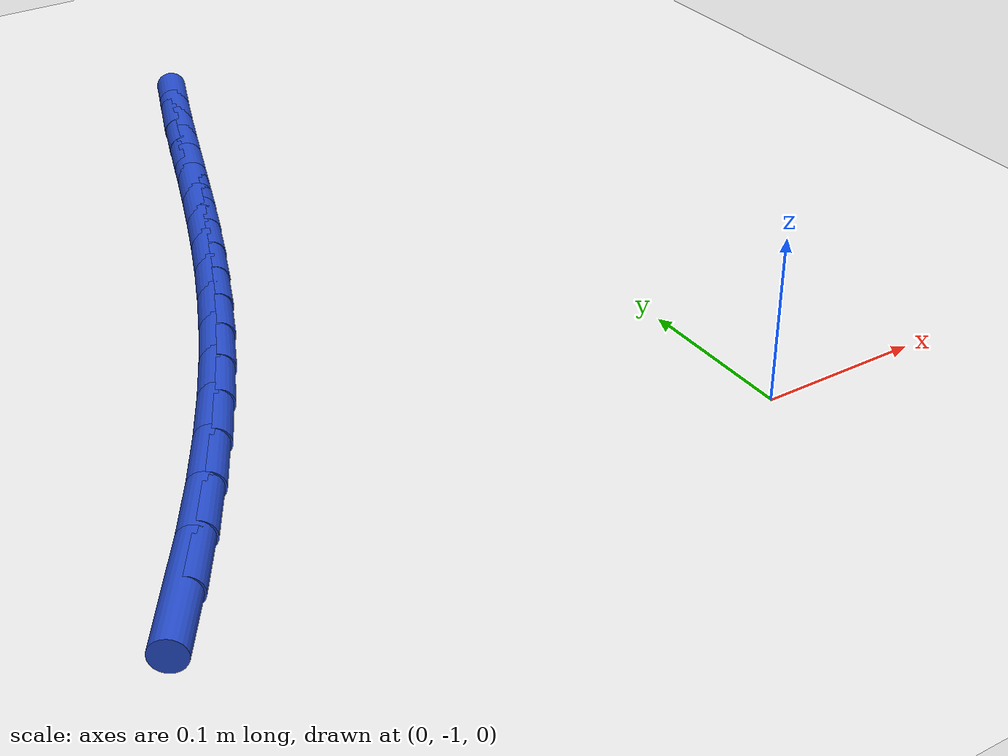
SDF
<sdf version="1.6">
 <world name="default">
  <model name="ground_plane">
   <static>1</static>
   <link name="link">
    <collision name="collision">
     <geometry><plane><normal>0 0 1</normal><size>100 100</size></plane></geometry>
     <surface><friction><ode><mu>100</mu><mu2>50</mu2></ode></friction></surface>
    </collision>
    <visual name="visual">
     <cast_shadows>0</cast_shadows>
     <geometry><plane><normal>0 0 1</normal><size>100 100</size></plane></geometry>
     <material>
      <script><uri>file://media/materials/scripts/gazebo.material</uri><name>Gazebo/WhiteGlow</name></script>
     </material>
    </visual>
   </link>
  </model>
  <model name="line">
   <link name="link_238">
    <pose>-0.3423890736142424 -0.9872053368880767 0.01 0 1.57 0.9895508569850079</pose>
    <collision name="collision">
     <geometry><cylinder><radius>0.01</radius><length>0.08</length></cylinder></geometry>
    </collision>
    <visual name="visual">
     <material>
      <script><name>Gazebo/Blue</name><uri>file://media/materials/scripts/gazebo.material</uri></script>
     </material>
     <geometry><cylinder><radius>0.01</radius><length>0.08</length></cylinder></geometry>
    </visual>
   </link>
   <link name="link_239">
    <pose>-0.31911903427657046 -0.9517840113050834 0.01 0 1.57 1.0191374338551102</pose>
    <collision name="collision">
     <geometry><cylinder><radius>0.01</radius><length>0.08</length></cylinder></geometry>
    </collision>
    <visual name="visual">
     <material>
      <script><name>Gazebo/Blue</name><uri>file://media/materials/scripts/gazebo.material</uri></script>
     </material>
     <geometry><cylinder><radius>0.01</radius><length>0.08</length></cylinder></geometry>
    </visual>
   </link>
   <link name="link_240">
    <pose>-0.29772353369176946 -0.9170166274464867 0.01 0 1.57 1.0482984063841438</pose>
    <collision name="collision">
     <geometry><cylinder><radius>0.01</radius><length>0.08</length></cylinder></geometry>
    </collision>
    <visual name="visual">
     <material>
      <script><name>Gazebo/Blue</name><uri>file://media/materials/scripts/gazebo.material</uri></script>
     </material>
     <geometry><cylinder><radius>0.01</radius><length>0.08</length></cylinder></geometry>
    </visual>
   </link>
   <link name="link_241">
    <pose>-0.27827747790331525 -0.8832492780295536 0.01 0 1.57 1.0773323771865626</pose>
    <collision name="collision">
     <geometry><cylinder><radius>0.01</radius><length>0.08</length></cylinder></geometry>
    </collision>
    <visual name="visual">
     <material>
      <script><name>Gazebo/Blue</name><uri>file://media/materials/scripts/gazebo.material</uri></script>
     </material>
     <geometry><cylinder><radius>0.01</radius><length>0.08</length></cylinder></geometry>
    </visual>
   </link>
   <link name="link_242">
    <pose>-0.260619663783503 -0.8504186556726699 0.01 0 1.57 1.1057965104993401</pose>
    <collision name="collision">
     <geometry><cylinder><radius>0.01</radius><length>0.08</length></cylinder></geometry>
    </collision>
    <visual name="visual">
     <material>
      <script><name>Gazebo/Blue</name><uri>file://media/materials/scripts/gazebo.material</uri></script>
     </material>
     <geometry><cylinder><radius>0.01</radius><length>0.08</length></cylinder></geometry>
    </visual>
   </link>
   <link name="link_243">
    <pose>-0.24457445037616787 -0.8184364186070804 0.01 0 1.57 1.1331729190629511</pose>
    <collision name="collision">
     <geometry><cylinder><radius>0.01</radius><length>0.08</length></cylinder></geometry>
    </collision>
    <visual name="visual">
     <material>
      <script><name>Gazebo/Blue</name><uri>file://media/materials/scripts/gazebo.material</uri></script>
     </material>
     <geometry><cylinder><radius>0.01</radius><length>0.08</length></cylinder></geometry>
    </visual>
   </link>
   <link name="link_244">
    <pose>-0.22996619672514315 -0.7872142250640249 0.01 0 1.57 1.1589054076408292</pose>
    <collision name="collision">
     <geometry><cylinder><radius>0.01</radius><length>0.08</length></cylinder></geometry>
    </collision>
    <visual name="visual">
     <material>
      <script><name>Gazebo/Blue</name><uri>file://media/materials/scripts/gazebo.material</uri></script>
     </material>
     <geometry><cylinder><radius>0.01</radius><length>0.08</length></cylinder></geometry>
    </visual>
   </link>
   <link name="link_245">
    <pose>-0.2166192618742637 -0.7566637332747477 0.01 0 1.57 1.1824211295163871</pose>
    <collision name="collision">
     <geometry><cylinder><radius>0.01</radius><length>0.08</length></cylinder></geometry>
    </collision>
    <visual name="visual">
     <material>
      <script><name>Gazebo/Blue</name><uri>file://media/materials/scripts/gazebo.material</uri></script>
     </material>
     <geometry><cylinder><radius>0.01</radius><length>0.08</length></cylinder></geometry>
    </visual>
   </link>
   <link name="link_246">
    <pose>-0.20435800486736316 -0.7266966014704895 0.01 0 1.57 1.203155803750303</pose>
    <collision name="collision">
     <geometry><cylinder><radius>0.01</radius><length>0.08</length></cylinder></geometry>
    </collision>
    <visual name="visual">
     <material>
      <script><name>Gazebo/Blue</name><uri>file://media/materials/scripts/gazebo.material</uri></script>
     </material>
     <geometry><cylinder><radius>0.01</radius><length>0.08</length></cylinder></geometry>
    </visual>
   </link>
   <link name="link_247">
    <pose>-0.19300678474827537 -0.6972244878824919 0.01 0 1.57 1.2205804425732054</pose>
    <collision name="collision">
     <geometry><cylinder><radius>0.01</radius><length>0.08</length></cylinder></geometry>
    </collision>
    <visual name="visual">
     <material>
      <script><name>Gazebo/Blue</name><uri>file://media/materials/scripts/gazebo.material</uri></script>
     </material>
     <geometry><cylinder><radius>0.01</radius><length>0.08</length></cylinder></geometry>
    </visual>
   </link>
   <link name="link_248">
    <pose>-0.18238996056083512 -0.6681590507419986 0.01 0 1.57 1.2342273928161767</pose>
    <collision name="collision">
     <geometry><cylinder><radius>0.01</radius><length>0.08</length></cylinder></geometry>
    </collision>
    <visual name="visual">
     <material>
      <script><name>Gazebo/Blue</name><uri>file://media/materials/scripts/gazebo.material</uri></script>
     </material>
     <geometry><cylinder><radius>0.01</radius><length>0.08</length></cylinder></geometry>
    </visual>
   </link>
   <link name="link_249">
    <pose>-0.17233189134887586 -0.6394119482802499 0.01 0 1.57 1.243713723370574</pose>
    <collision name="collision">
     <geometry><cylinder><radius>0.01</radius><length>0.08</length></cylinder></geometry>
    </collision>
    <visual name="visual">
     <material>
      <script><name>Gazebo/Blue</name><uri>file://media/materials/scripts/gazebo.material</uri></script>
     </material>
     <geometry><cylinder><radius>0.01</radius><length>0.08</length></cylinder></geometry>
    </visual>
   </link>
   <link name="link_250">
    <pose>-0.16265693615623228 -0.6108948387284903 0.01 0 1.57 1.2487604687012415</pose>
    <collision name="collision">
     <geometry><cylinder><radius>0.01</radius><length>0.08</length></cylinder></geometry>
    </collision>
    <visual name="visual">
     <material>
      <script><name>Gazebo/Blue</name><uri>file://media/materials/scripts/gazebo.material</uri></script>
     </material>
     <geometry><cylinder><radius>0.01</radius><length>0.08</length></cylinder></geometry>
    </visual>
   </link>
   <link name="link_251">
    <pose>-0.15318945402673795 -0.5825193803179594 0.01 0 1.57 1.249206774863838</pose>
    <collision name="collision">
     <geometry><cylinder><radius>0.01</radius><length>0.08</length></cylinder></geometry>
    </collision>
    <visual name="visual">
     <material>
      <script><name>Gazebo/Blue</name><uri>file://media/materials/scripts/gazebo.material</uri></script>
     </material>
     <geometry><cylinder><radius>0.01</radius><length>0.08</length></cylinder></geometry>
    </visual>
   </link>
   <link name="link_252">
    <pose>-0.1437538040042275 -0.5541972312799014 0.01 0 1.57 1.245018418149445</pose>
    <collision name="collision">
     <geometry><cylinder><radius>0.01</radius><length>0.08</length></cylinder></geometry>
    </collision>
    <visual name="visual">
     <material>
      <script><name>Gazebo/Blue</name><uri>file://media/materials/scripts/gazebo.material</uri></script>
     </material>
     <geometry><cylinder><radius>0.01</radius><length>0.08</length></cylinder></geometry>
    </visual>
   </link>
   <link name="link_253">
    <pose>-0.13417434513253454 -0.5258400498455568 0.01 0 1.57 1.236290400740573</pose>
    <collision name="collision">
     <geometry><cylinder><radius>0.01</radius><length>0.08</length></cylinder></geometry>
    </collision>
    <visual name="visual">
     <material>
      <script><name>Gazebo/Blue</name><uri>file://media/materials/scripts/gazebo.material</uri></script>
     </material>
     <geometry><cylinder><radius>0.01</radius><length>0.08</length></cylinder></geometry>
    </visual>
   </link>
   <link name="link_254">
    <pose>-0.12427543645549369 -0.49735949424616926 0.01 0 1.57 1.2232434169261126</pose>
    <collision name="collision">
     <geometry><cylinder><radius>0.01</radius><length>0.08</length></cylinder></geometry>
    </collision>
    <visual name="visual">
     <material>
      <script><name>Gazebo/Blue</name><uri>file://media/materials/scripts/gazebo.material</uri></script>
     </material>
     <geometry><cylinder><radius>0.01</radius><length>0.08</length></cylinder></geometry>
    </visual>
   </link>
  </model>
 </world>
</sdf>
